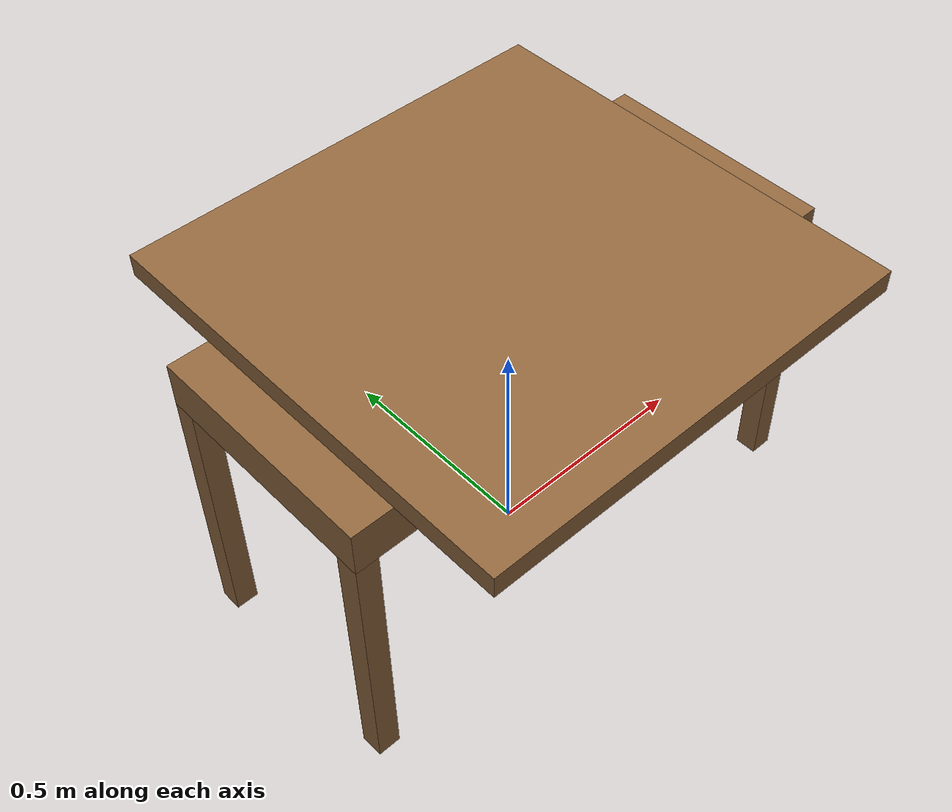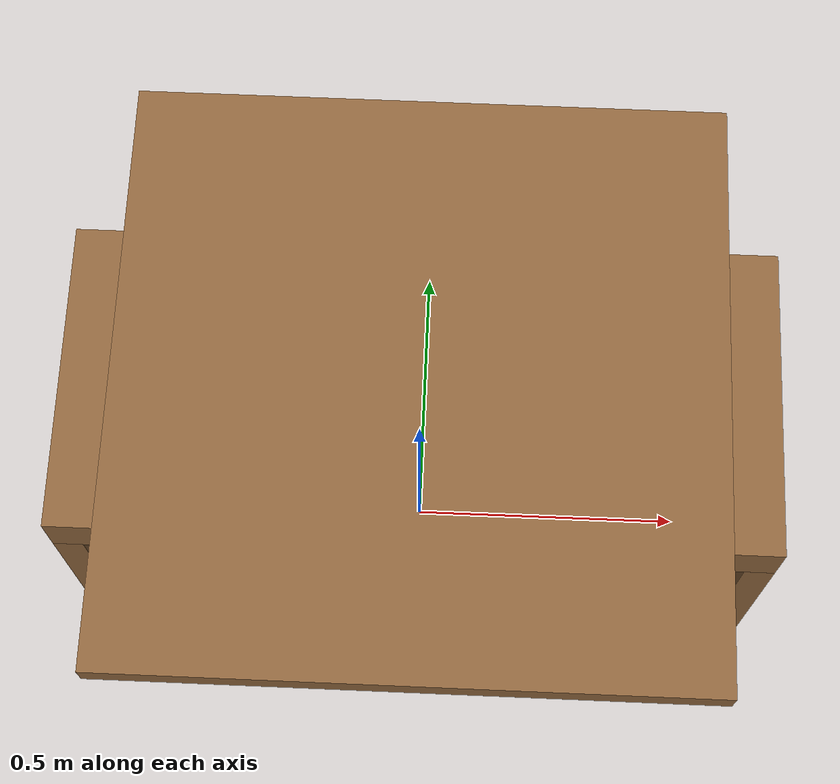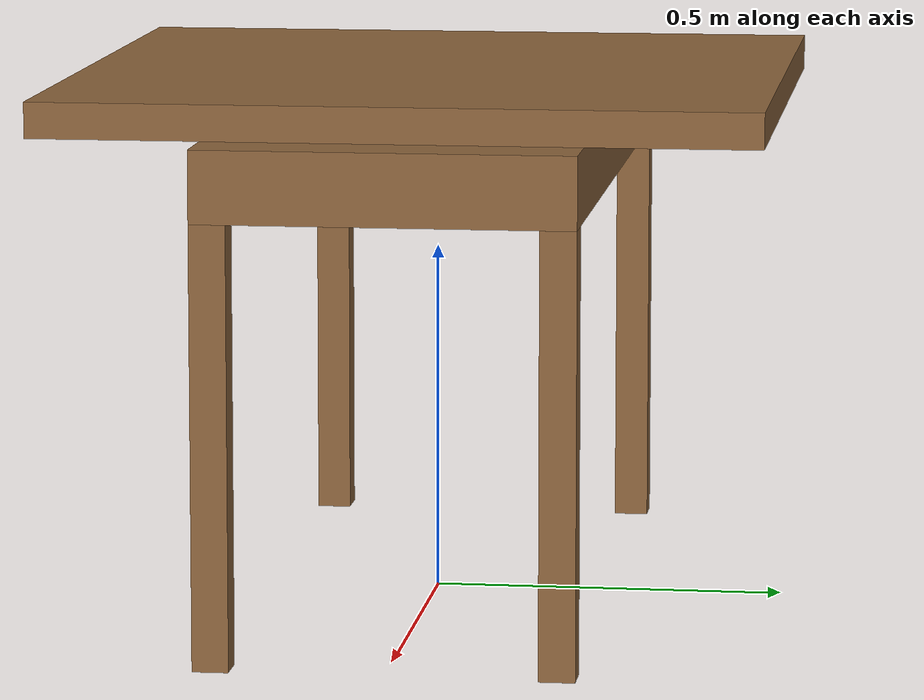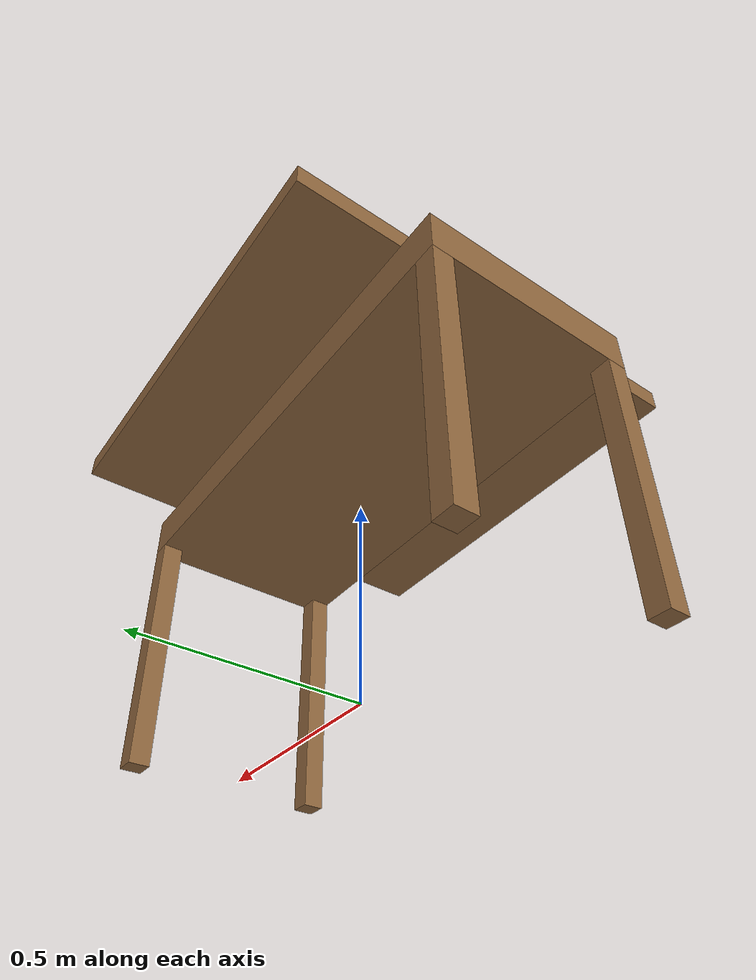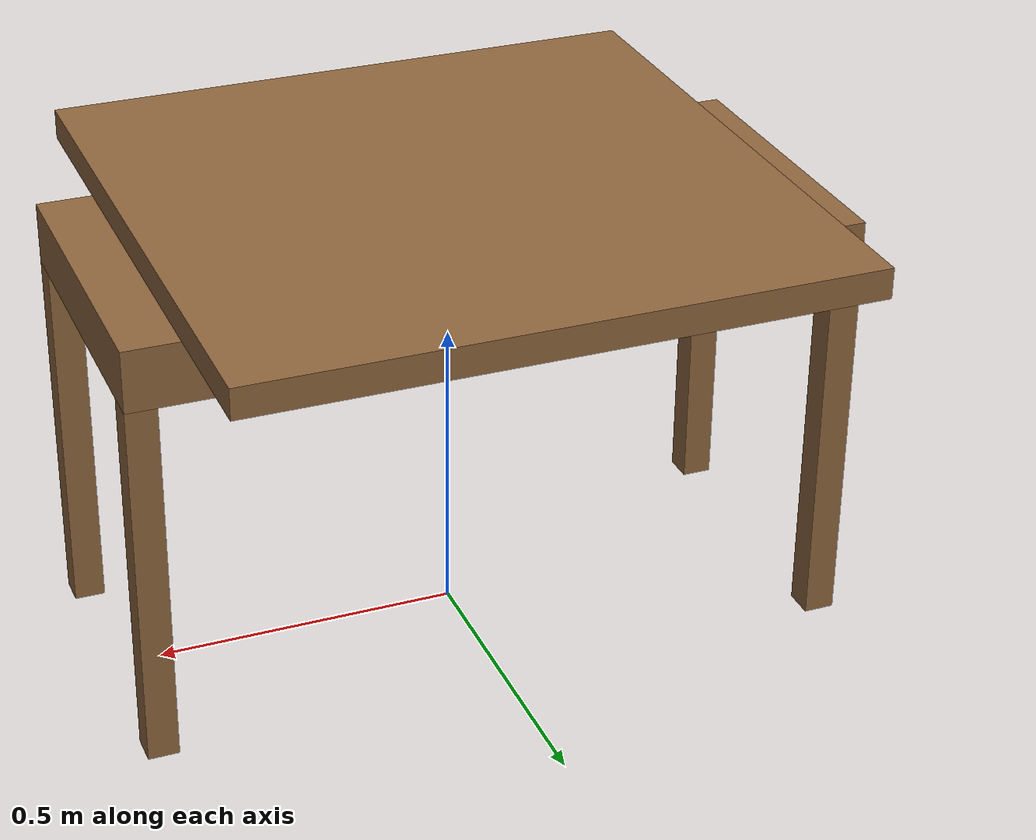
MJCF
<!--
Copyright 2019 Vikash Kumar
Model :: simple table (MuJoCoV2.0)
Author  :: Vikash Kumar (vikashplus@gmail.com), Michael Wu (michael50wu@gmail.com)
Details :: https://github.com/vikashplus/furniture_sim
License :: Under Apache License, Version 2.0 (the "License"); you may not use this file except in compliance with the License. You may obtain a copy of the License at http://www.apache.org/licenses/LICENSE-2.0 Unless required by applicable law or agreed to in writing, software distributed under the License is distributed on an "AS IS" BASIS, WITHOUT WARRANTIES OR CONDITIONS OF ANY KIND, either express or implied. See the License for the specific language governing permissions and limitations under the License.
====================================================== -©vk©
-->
<mujoco model="simpleTable">

    <compiler angle="radian" meshdir="" texturedir=""/>
    <include file="../furniture_sim/simpleTable/simpleTable_asset.xml"/>
    <visual>
        <headlight diffuse=".9 .9 .9"/>
    </visual>

    <worldbody>

        <body pos="0 0 0">
            <include file="../furniture_sim/simpleTable/simpleWoodTable_body.xml" />
        </body>
    </worldbody>

</mujoco>

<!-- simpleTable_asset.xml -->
<mujocoinclude>

    <asset>
        <texture name="T_simpleWoodTable" type="cube" height="1" width="1" file="common/textures/wood1.png" />
        <material name="M_simpleWoodTable" texture="T_simpleWoodTable" rgba="0.8 0.8 0.8 1" shininess="0.2" reflectance="0.3" texuniform="false" />
    </asset>

    <default>

        <default class="viz_simpleWoodTable" >
            <geom group="1" contype="0" conaffinity="0" type="mesh" material="M_simpleWoodTable"/>
        </default>

        <default class="viz_simpleMarbleTable" >
            <geom group="1" contype="0" conaffinity="0" type="mesh" material="M_simpleMarbleTable"/>
        </default>

        <default class="viz_simpleGraniteTable" >
            <geom group="1" contype="0" conaffinity="0" type="mesh" material="M_simpleGraniteTable"/>
        </default>

        <default class="body_simpleTable" >
            <geom contype="1" conaffinity="1" group="4" rgba=".4 .5 .6 1" />
            <joint limited="true" damping="1" frictionloss="0.5" armature=".01" />
        </default>

   </default>

</mujocoinclude>

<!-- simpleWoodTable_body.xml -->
<mujocoinclude>

    <!-- simpleWoodTable -©vk©-->
    <body name="simpleWoodTable" pos="0 0 0"  childclass="body_simpleTable" >
        <geom class="viz_simpleWoodTable" type="box" size="0.5 0.5 .025" pos="0 0 0.735"/>
        <geom class="viz_simpleWoodTable" type="box" size="0.59 0.26 .05" pos="0 0 0.66"/>
        <geom class="viz_simpleWoodTable" type="box" size="0.025 0.025 0.305" pos="-0.565 0.235 0.305"/>
        <geom class="viz_simpleWoodTable" type="box" size="0.025 0.025 0.305" pos="-0.565 -0.235 0.305"/>
        <geom class="viz_simpleWoodTable" type="box" size="0.025 0.025 0.305" pos="0.565 0.235 0.305"/>
        <geom class="viz_simpleWoodTable" type="box" size="0.025 0.025 0.305" pos="0.565 -0.235 0.305"/>

        <geom type="box" size="0.5 0.5 .025" pos="0 0 0.735" mass="40" />
        <geom type="box" size="0.59 0.26 .05" pos="0 0 0.66"/>
        <geom type="box" size="0.025 0.025 0.305" pos="-0.565 0.235 0.305"/>
        <geom type="box" size="0.025 0.025 0.305" pos="-0.565 -0.235 0.305"/>
        <geom type="box" size="0.025 0.025 0.305" pos="0.565 0.235 0.305"/>
        <geom type="box" size="0.025 0.025 0.305" pos="0.565 -0.235 0.305"/>
    </body>
</mujocoinclude>
